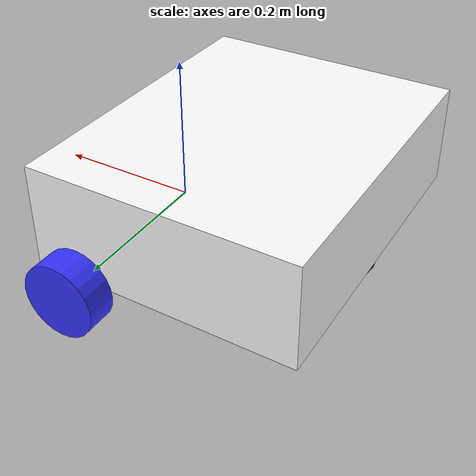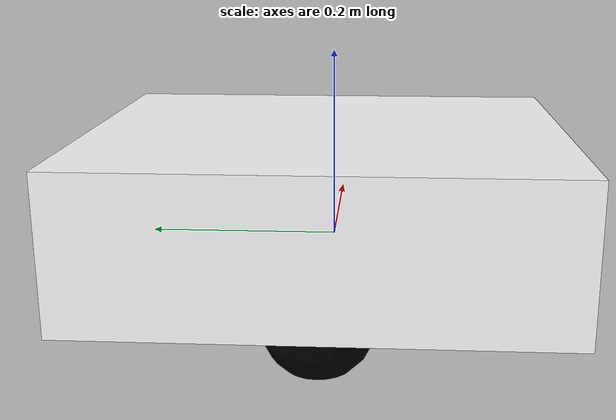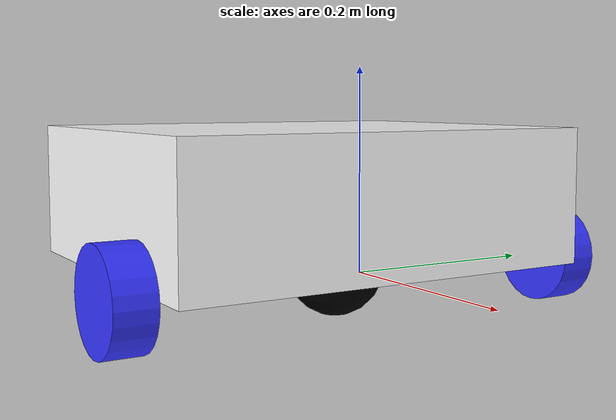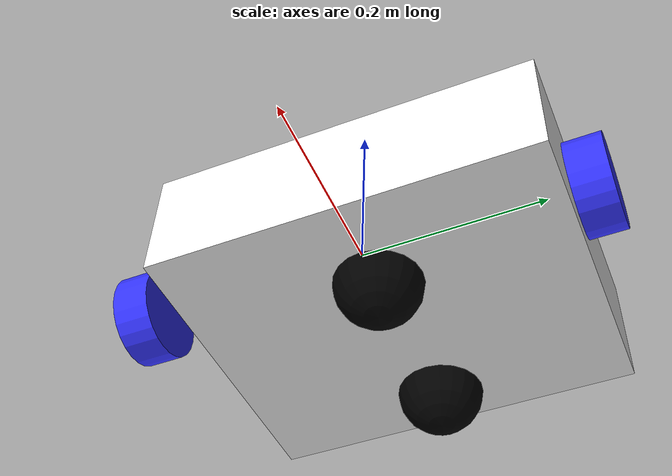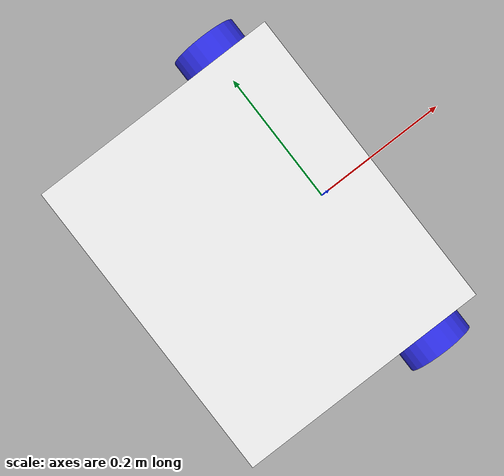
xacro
<?xml version="1.0"?>
<robot xmlns:xacro="http://www.ros.org/wiki/xacro"  name="robot">

    <xacro:include filename="inertial_macros.xacro" />
    <material name="white">
        <color rgba="1 1 1 1" />
    </material>

    <material name="orange">
        <color rgba="1 0.3 0.1 1"/>
    </material>

    <material name="blue">
        <color rgba="0.2 0.2 1 1"/>
    </material>

    <material name="black">
        <color rgba="0 0 0 1"/>
    </material>

    <material name="red">
        <color rgba="1 0 0 1"/>
    </material>

<!-- BASE LINK -->

    <link name="base_link">

    </link>

    <!-- CHASSIS LINK -->

    <joint name="chassis_joint" type="fixed">
        <parent link="base_link"/>
        <child link="chassis"/>
        <origin xyz="-0.29 0 0"/>
    </joint>

    <link name="chassis">
        <visual>
        <origin xyz="0.18 0 0.07" />
            <geometry>
                <box size="0.36 0.44 0.14" />
            </geometry>
            <material name="white" />
        </visual>
        <collision>
            <origin xyz="0.18 0 0.07" />
            <geometry>
                <box size="0.36 0.44 0.14" />
            </geometry>
        </collision>
        <xacro:inertial_box mass="0.5" x="0.36" y="0.44" z="0.14">
            <origin xyz="0.18 0 0.07" rpy="0 0 0" />
        </xacro:inertial_box>
    </link>
    <gazebo reference="chassis">
        <material>Gazebo/White</material>
    </gazebo>

    <!-- LEFT WHEEL LINK -->

    <joint name="left_wheel_joint" type="continuous">
        <parent link="base_link"/>
        <child link="left_wheel"/>
        <origin xyz="0 0.2475 0" rpy="-${pi/2} 0 0" />
        <axis xyz="0 0 1"/>
    </joint>

    <link name="left_wheel">
        <visual>
            <geometry>
                <cylinder radius="0.05" length="0.04" />
            </geometry>
            <material name="blue" />
        </visual>
        <collision>
            <geometry>
                <sphere radius="0.05" />
            </geometry>
        </collision>
        <xacro:inertial_cylinder mass="0.1" radius="0.05" length="0.04">
            <origin xyz="0.0 0 0.0" rpy="0 0 0" />
        </xacro:inertial_cylinder>
    </link>
    <gazebo reference="left_wheel">
        <material>Gazebo/Blue</material>
    </gazebo>

   <!-- RIGHT WHEEL LINK -->

    <joint name="right_wheel_joint" type="continuous">
        <parent link="base_link"/>
        <child link="right_wheel"/>
        <origin xyz="0 -0.2475 0" rpy="${pi/2} 0 0" />
        <axis xyz="0 0 -1"/>
    </joint>

    <link name="right_wheel">
        <visual>
            <geometry>
                <cylinder radius="0.05" length="0.04" />
            </geometry>
            <material name="blue" />
        </visual>
        <collision>
            <geometry>
                <sphere radius="0.05" />
            </geometry>
        </collision>
        <xacro:inertial_cylinder mass="0.1" radius="0.05" length="0.04">
            <origin xyz="0.0 0 0.0" rpy="0 0 0" />
        </xacro:inertial_cylinder>
    </link>
    <gazebo reference="right_wheel">
        <material>Gazebo/Blue</material>
    </gazebo>

<!-- CASTER WHEEL LINK FRONT -->

    <joint name="caster_wheel_joint_front" type="fixed">
        <parent link="chassis"/>
        <child link="caster_wheel_front"/>
        <origin xyz="0.245 0 0"/>
    </joint>

    <link name="caster_wheel_front">
        <visual>
            <geometry>
                <sphere radius="0.05" />
            </geometry>
            <material name="black" />
        </visual>
        <collision>
            <geometry>
                <sphere radius="0.05" />
            </geometry>
        </collision>
        <xacro:inertial_sphere mass="0.1" radius="0.05">
            <origin xyz="0.0 0 0.0" rpy="0 0 0" />
        </xacro:inertial_sphere>
    </link>

    <gazebo reference="caster_wheel_front">
        <material>Gazebo/Black</material>
        <mu1 value="0.001" />
        <mu2 value="0.001" />
    </gazebo>

<!-- CASTER WHEEL LINK BACK -->

    <joint name="caster_wheel_joint_back" type="fixed">
        <parent link="chassis"/>
        <child link="caster_wheel_back"/>
        <origin xyz="0.052 0 0"/>
    </joint>

    <link name="caster_wheel_back">
        <visual>
            <geometry>
                <sphere radius="0.05" />
            </geometry>
            <material name="black" />
        </visual>
        <collision>
            <geometry>
                <sphere radius="0.05" />
            </geometry>
        </collision>
    </link>
    <gazebo reference="caster_wheel_back">
        <material>Gazebo/Black</material>
        <mu1 value="0.001" />
        <mu2 value="0.001" />
    </gazebo>

</robot>
